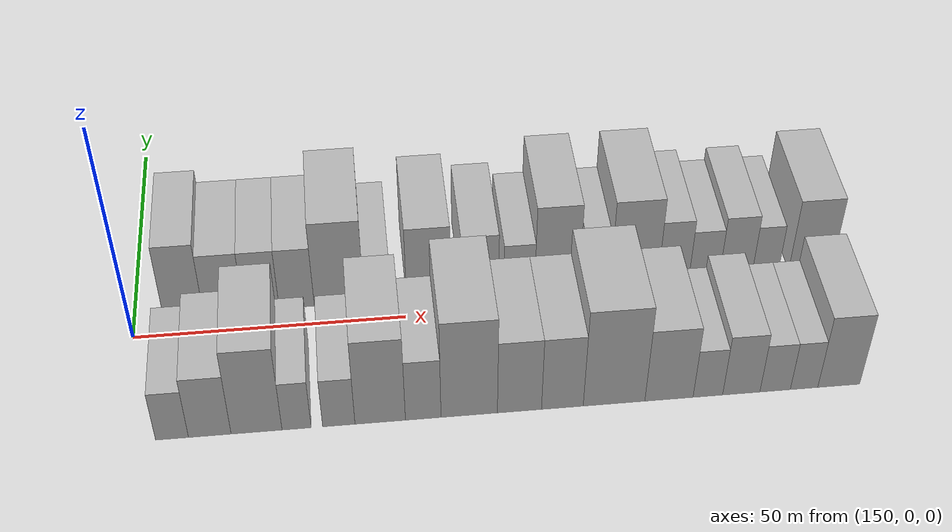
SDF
<sdf version="1.6">
 <world name="default">
  <model name="building_17">
   <static>1</static>
   <pose>158.9749 14.5000 0 0.000000 0.000000 1.570796</pose>
   <link name="link">
    <pose>0 0 9.00 0 0 0</pose>
    <collision name="collision"><geometry><box><size>20.0000 7.3801 18.0000</size></box></geometry></collision>
    <visual name="visual">
     <cast_shadows>0</cast_shadows>
     <geometry><box><size>20.0000 7.3801 18.0000</size></box></geometry>
     <material>
      <script>
       <uri>model://HANNAS_wall/materials/scripts</uri>
       <uri>model://HANNAS_wall/materials/textures</uri>
       <name>vrc/HANNAS_wall</name>
      </script>
     </material>
    </visual>
   </link>
  </model>
  <model name="building_18">
   <static>1</static>
   <pose>166.3791 14.5000 0 0.000000 0.000000 1.570796</pose>
   <link name="link">
    <pose>0 0 7.50 0 0 0</pose>
    <collision name="collision"><geometry><box><size>20.0000 7.4284 15.0000</size></box></geometry></collision>
    <visual name="visual">
     <cast_shadows>0</cast_shadows>
     <geometry><box><size>20.0000 7.4284 15.0000</size></box></geometry>
     <material>
      <script>
       <uri>model://HANNAS_wall/materials/scripts</uri>
       <uri>model://HANNAS_wall/materials/textures</uri>
       <name>vrc/HANNAS_wall</name>
      </script>
     </material>
    </visual>
   </link>
  </model>
  <model name="building_19">
   <static>1</static>
   <pose>173.3979 14.5000 0 0.000000 0.000000 1.570796</pose>
   <link name="link">
    <pose>0 0 7.50 0 0 0</pose>
    <collision name="collision"><geometry><box><size>20.0000 6.6092 15.0000</size></box></geometry></collision>
    <visual name="visual">
     <cast_shadows>0</cast_shadows>
     <geometry><box><size>20.0000 6.6092 15.0000</size></box></geometry>
     <material>
      <script>
       <uri>model://HANNAS_wall/materials/scripts</uri>
       <uri>model://HANNAS_wall/materials/textures</uri>
       <name>vrc/HANNAS_wall</name>
      </script>
     </material>
    </visual>
   </link>
  </model>
  <model name="building_20">
   <static>1</static>
   <pose>179.9726 14.5000 0 0.000000 0.000000 1.570796</pose>
   <link name="link">
    <pose>0 0 7.50 0 0 0</pose>
    <collision name="collision"><geometry><box><size>20.0000 6.5402 15.0000</size></box></geometry></collision>
    <visual name="visual">
     <cast_shadows>0</cast_shadows>
     <geometry><box><size>20.0000 6.5402 15.0000</size></box></geometry>
     <material>
      <script>
       <uri>model://HANNAS_wall/materials/scripts</uri>
       <uri>model://HANNAS_wall/materials/textures</uri>
       <name>vrc/HANNAS_wall</name>
      </script>
     </material>
    </visual>
   </link>
  </model>
  <model name="building_21">
   <static>1</static>
   <pose>187.8923 14.5000 0 0.000000 0.000000 1.570796</pose>
   <link name="link">
    <pose>0 0 10.50 0 0 0</pose>
    <collision name="collision"><geometry><box><size>20.0000 9.2992 21.0000</size></box></geometry></collision>
    <visual name="visual">
     <cast_shadows>0</cast_shadows>
     <geometry><box><size>20.0000 9.2992 21.0000</size></box></geometry>
     <material>
      <script>
       <uri>model://HANNAS_wall/materials/scripts</uri>
       <uri>model://HANNAS_wall/materials/textures</uri>
       <name>vrc/HANNAS_wall</name>
      </script>
     </material>
    </visual>
   </link>
  </model>
  <model name="building_22">
   <static>1</static>
   <pose>195.0158 14.5000 0 0.000000 0.000000 1.570796</pose>
   <link name="link">
    <pose>0 0 6.00 0 0 0</pose>
    <collision name="collision"><geometry><box><size>20.0000 4.9476 12.0000</size></box></geometry></collision>
    <visual name="visual">
     <cast_shadows>0</cast_shadows>
     <geometry><box><size>20.0000 4.9476 12.0000</size></box></geometry>
     <material>
      <script>
       <uri>model://HANNAS_wall/materials/scripts</uri>
       <uri>model://HANNAS_wall/materials/textures</uri>
       <name>vrc/HANNAS_wall</name>
      </script>
     </material>
    </visual>
   </link>
  </model>
  <model name="building_23">
   <static>1</static>
   <pose>204.6551 14.5000 0 0.000000 0.000000 1.570796</pose>
   <link name="link">
    <pose>0 0 9.00 0 0 0</pose>
    <collision name="collision"><geometry><box><size>20.0000 8.3310 18.0000</size></box></geometry></collision>
    <visual name="visual">
     <cast_shadows>0</cast_shadows>
     <geometry><box><size>20.0000 8.3310 18.0000</size></box></geometry>
     <material>
      <script>
       <uri>model://HANNAS_wall/materials/scripts</uri>
       <uri>model://HANNAS_wall/materials/textures</uri>
       <name>vrc/HANNAS_wall</name>
      </script>
     </material>
    </visual>
   </link>
  </model>
  <model name="building_24">
   <static>1</static>
   <pose>214.3445 14.5000 0 0.000000 0.000000 1.570796</pose>
   <link name="link">
    <pose>0 0 7.50 0 0 0</pose>
    <collision name="collision"><geometry><box><size>20.0000 7.0478 15.0000</size></box></geometry></collision>
    <visual name="visual">
     <cast_shadows>0</cast_shadows>
     <geometry><box><size>20.0000 7.0478 15.0000</size></box></geometry>
     <material>
      <script>
       <uri>model://HANNAS_wall/materials/scripts</uri>
       <uri>model://HANNAS_wall/materials/textures</uri>
       <name>vrc/HANNAS_wall</name>
      </script>
     </material>
    </visual>
   </link>
  </model>
  <model name="building_25">
   <static>1</static>
   <pose>221.7925 14.5000 0 0.000000 0.000000 1.570796</pose>
   <link name="link">
    <pose>0 0 6.00 0 0 0</pose>
    <collision name="collision"><geometry><box><size>20.0000 5.8482 12.0000</size></box></geometry></collision>
    <visual name="visual">
     <cast_shadows>0</cast_shadows>
     <geometry><box><size>20.0000 5.8482 12.0000</size></box></geometry>
     <material>
      <script>
       <uri>model://HANNAS_wall/materials/scripts</uri>
       <uri>model://HANNAS_wall/materials/textures</uri>
       <name>vrc/HANNAS_wall</name>
      </script>
     </material>
    </visual>
   </link>
  </model>
  <model name="building_26">
   <static>1</static>
   <pose>228.9413 14.5000 0 0.000000 0.000000 1.570796</pose>
   <link name="link">
    <pose>0 0 10.50 0 0 0</pose>
    <collision name="collision"><geometry><box><size>20.0000 8.4494 21.0000</size></box></geometry></collision>
    <visual name="visual">
     <cast_shadows>0</cast_shadows>
     <geometry><box><size>20.0000 8.4494 21.0000</size></box></geometry>
     <material>
      <script>
       <uri>model://HANNAS_wall/materials/scripts</uri>
       <uri>model://HANNAS_wall/materials/textures</uri>
       <name>vrc/HANNAS_wall</name>
      </script>
     </material>
    </visual>
   </link>
  </model>
  <model name="building_27">
   <static>1</static>
   <pose>236.6416 14.5000 0 0.000000 0.000000 1.570796</pose>
   <link name="link">
    <pose>0 0 6.00 0 0 0</pose>
    <collision name="collision"><geometry><box><size>20.0000 4.9512 12.0000</size></box></geometry></collision>
    <visual name="visual">
     <cast_shadows>0</cast_shadows>
     <geometry><box><size>20.0000 4.9512 12.0000</size></box></geometry>
     <material>
      <script>
       <uri>model://HANNAS_wall/materials/scripts</uri>
       <uri>model://HANNAS_wall/materials/textures</uri>
       <name>vrc/HANNAS_wall</name>
      </script>
     </material>
    </visual>
   </link>
  </model>
  <model name="building_28">
   <static>1</static>
   <pose>243.6999 14.5000 0 0.000000 0.000000 1.570796</pose>
   <link name="link">
    <pose>0 0 10.50 0 0 0</pose>
    <collision name="collision"><geometry><box><size>20.0000 9.1655 21.0000</size></box></geometry></collision>
    <visual name="visual">
     <cast_shadows>0</cast_shadows>
     <geometry><box><size>20.0000 9.1655 21.0000</size></box></geometry>
     <material>
      <script>
       <uri>model://HANNAS_wall/materials/scripts</uri>
       <uri>model://HANNAS_wall/materials/textures</uri>
       <name>vrc/HANNAS_wall</name>
      </script>
     </material>
    </visual>
   </link>
  </model>
  <model name="building_29">
   <static>1</static>
   <pose>251.2862 14.5000 0 0.000000 0.000000 1.570796</pose>
   <link name="link">
    <pose>0 0 7.50 0 0 0</pose>
    <collision name="collision"><geometry><box><size>20.0000 6.0071 15.0000</size></box></geometry></collision>
    <visual name="visual">
     <cast_shadows>0</cast_shadows>
     <geometry><box><size>20.0000 6.0071 15.0000</size></box></geometry>
     <material>
      <script>
       <uri>model://HANNAS_wall/materials/scripts</uri>
       <uri>model://HANNAS_wall/materials/textures</uri>
       <name>vrc/HANNAS_wall</name>
      </script>
     </material>
    </visual>
   </link>
  </model>
  <model name="building_30">
   <static>1</static>
   <pose>257.2351 14.5000 0 0.000000 0.000000 1.570796</pose>
   <link name="link">
    <pose>0 0 6.00 0 0 0</pose>
    <collision name="collision"><geometry><box><size>20.0000 5.8907 12.0000</size></box></geometry></collision>
    <visual name="visual">
     <cast_shadows>0</cast_shadows>
     <geometry><box><size>20.0000 5.8907 12.0000</size></box></geometry>
     <material>
      <script>
       <uri>model://HANNAS_wall/materials/scripts</uri>
       <uri>model://HANNAS_wall/materials/textures</uri>
       <name>vrc/HANNAS_wall</name>
      </script>
     </material>
    </visual>
   </link>
  </model>
  <model name="building_31">
   <static>1</static>
   <pose>263.3478 14.5000 0 0.000000 0.000000 1.570796</pose>
   <link name="link">
    <pose>0 0 7.50 0 0 0</pose>
    <collision name="collision"><geometry><box><size>20.0000 6.3346 15.0000</size></box></geometry></collision>
    <visual name="visual">
     <cast_shadows>0</cast_shadows>
     <geometry><box><size>20.0000 6.3346 15.0000</size></box></geometry>
     <material>
      <script>
       <uri>model://HANNAS_wall/materials/scripts</uri>
       <uri>model://HANNAS_wall/materials/textures</uri>
       <name>vrc/HANNAS_wall</name>
      </script>
     </material>
    </visual>
   </link>
  </model>
  <model name="building_32">
   <static>1</static>
   <pose>269.0631 14.5000 0 0.000000 0.000000 1.570796</pose>
   <link name="link">
    <pose>0 0 6.00 0 0 0</pose>
    <collision name="collision"><geometry><box><size>20.0000 5.0959 12.0000</size></box></geometry></collision>
    <visual name="visual">
     <cast_shadows>0</cast_shadows>
     <geometry><box><size>20.0000 5.0959 12.0000</size></box></geometry>
     <material>
      <script>
       <uri>model://HANNAS_wall/materials/scripts</uri>
       <uri>model://HANNAS_wall/materials/textures</uri>
       <name>vrc/HANNAS_wall</name>
      </script>
     </material>
    </visual>
   </link>
  </model>
  <model name="building_33">
   <static>1</static>
   <pose>277.8406 14.5000 0 0.000000 0.000000 1.570796</pose>
   <link name="link">
    <pose>0 0 9.00 0 0 0</pose>
    <collision name="collision"><geometry><box><size>20.0000 8.4593 18.0000</size></box></geometry></collision>
    <visual name="visual">
     <cast_shadows>0</cast_shadows>
     <geometry><box><size>20.0000 8.4593 18.0000</size></box></geometry>
     <material>
      <script>
       <uri>model://HANNAS_wall/materials/scripts</uri>
       <uri>model://HANNAS_wall/materials/textures</uri>
       <name>vrc/HANNAS_wall</name>
      </script>
     </material>
    </visual>
   </link>
  </model>
  <model name="building_50">
   <static>1</static>
   <pose>157.9171 -14.5000 0 0.000000 0.000000 1.570796</pose>
   <link name="link">
    <pose>0 0 6.00 0 0 0</pose>
    <collision name="collision"><geometry><box><size>20.0000 5.6320 12.0000</size></box></geometry></collision>
    <visual name="visual">
     <cast_shadows>0</cast_shadows>
     <geometry><box><size>20.0000 5.6320 12.0000</size></box></geometry>
     <material>
      <script>
       <uri>model://HANNAS_wall/materials/scripts</uri>
       <uri>model://HANNAS_wall/materials/textures</uri>
       <name>vrc/HANNAS_wall</name>
      </script>
     </material>
    </visual>
   </link>
  </model>
  <model name="building_51">
   <static>1</static>
   <pose>164.3888 -14.5000 0 0.000000 0.000000 1.570796</pose>
   <link name="link">
    <pose>0 0 7.50 0 0 0</pose>
    <collision name="collision"><geometry><box><size>20.0000 7.3114 15.0000</size></box></geometry></collision>
    <visual name="visual">
     <cast_shadows>0</cast_shadows>
     <geometry><box><size>20.0000 7.3114 15.0000</size></box></geometry>
     <material>
      <script>
       <uri>model://HANNAS_wall/materials/scripts</uri>
       <uri>model://HANNAS_wall/materials/textures</uri>
       <name>vrc/HANNAS_wall</name>
      </script>
     </material>
    </visual>
   </link>
  </model>
  <model name="building_52">
   <static>1</static>
   <pose>172.4327 -14.5000 0 0.000000 0.000000 1.570796</pose>
   <link name="link">
    <pose>0 0 10.50 0 0 0</pose>
    <collision name="collision"><geometry><box><size>20.0000 8.7764 21.0000</size></box></geometry></collision>
    <visual name="visual">
     <cast_shadows>0</cast_shadows>
     <geometry><box><size>20.0000 8.7764 21.0000</size></box></geometry>
     <material>
      <script>
       <uri>model://HANNAS_wall/materials/scripts</uri>
       <uri>model://HANNAS_wall/materials/textures</uri>
       <name>vrc/HANNAS_wall</name>
      </script>
     </material>
    </visual>
   </link>
  </model>
  <model name="building_53">
   <static>1</static>
   <pose>179.3356 -14.5000 0 0.000000 0.000000 1.570796</pose>
   <link name="link">
    <pose>0 0 6.00 0 0 0</pose>
    <collision name="collision"><geometry><box><size>20.0000 5.0295 12.0000</size></box></geometry></collision>
    <visual name="visual">
     <cast_shadows>0</cast_shadows>
     <geometry><box><size>20.0000 5.0295 12.0000</size></box></geometry>
     <material>
      <script>
       <uri>model://HANNAS_wall/materials/scripts</uri>
       <uri>model://HANNAS_wall/materials/textures</uri>
       <name>vrc/HANNAS_wall</name>
      </script>
     </material>
    </visual>
   </link>
  </model>
  <model name="building_54">
   <static>1</static>
   <pose>186.6545 -14.5000 0 0.000000 0.000000 1.570796</pose>
   <link name="link">
    <pose>0 0 6.00 0 0 0</pose>
    <collision name="collision"><geometry><box><size>20.0000 5.6083 12.0000</size></box></geometry></collision>
    <visual name="visual">
     <cast_shadows>0</cast_shadows>
     <geometry><box><size>20.0000 5.6083 12.0000</size></box></geometry>
     <material>
      <script>
       <uri>model://HANNAS_wall/materials/scripts</uri>
       <uri>model://HANNAS_wall/materials/textures</uri>
       <name>vrc/HANNAS_wall</name>
      </script>
     </material>
    </visual>
   </link>
  </model>
  <model name="building_55">
   <static>1</static>
   <pose>193.8561 -14.5000 0 0.000000 0.000000 1.570796</pose>
   <link name="link">
    <pose>0 0 10.50 0 0 0</pose>
    <collision name="collision"><geometry><box><size>20.0000 8.7949 21.0000</size></box></geometry></collision>
    <visual name="visual">
     <cast_shadows>0</cast_shadows>
     <geometry><box><size>20.0000 8.7949 21.0000</size></box></geometry>
     <material>
      <script>
       <uri>model://HANNAS_wall/materials/scripts</uri>
       <uri>model://HANNAS_wall/materials/textures</uri>
       <name>vrc/HANNAS_wall</name>
      </script>
     </material>
    </visual>
   </link>
  </model>
  <model name="building_56">
   <static>1</static>
   <pose>201.3664 -14.5000 0 0.000000 0.000000 1.570796</pose>
   <link name="link">
    <pose>0 0 7.50 0 0 0</pose>
    <collision name="collision"><geometry><box><size>20.0000 6.2258 15.0000</size></box></geometry></collision>
    <visual name="visual">
     <cast_shadows>0</cast_shadows>
     <geometry><box><size>20.0000 6.2258 15.0000</size></box></geometry>
     <material>
      <script>
       <uri>model://HANNAS_wall/materials/scripts</uri>
       <uri>model://HANNAS_wall/materials/textures</uri>
       <name>vrc/HANNAS_wall</name>
      </script>
     </material>
    </visual>
   </link>
  </model>
  <model name="building_57">
   <static>1</static>
   <pose>209.4299 -14.5000 0 0.000000 0.000000 1.570796</pose>
   <link name="link">
    <pose>0 0 12.00 0 0 0</pose>
    <collision name="collision"><geometry><box><size>20.0000 9.9013 24.0000</size></box></geometry></collision>
    <visual name="visual">
     <cast_shadows>0</cast_shadows>
     <geometry><box><size>20.0000 9.9013 24.0000</size></box></geometry>
     <material>
      <script>
       <uri>model://HANNAS_wall/materials/scripts</uri>
       <uri>model://HANNAS_wall/materials/textures</uri>
       <name>vrc/HANNAS_wall</name>
      </script>
     </material>
    </visual>
   </link>
  </model>
  <model name="building_58">
   <static>1</static>
   <pose>218.2733 -14.5000 0 0.000000 0.000000 1.570796</pose>
   <link name="link">
    <pose>0 0 9.00 0 0 0</pose>
    <collision name="collision"><geometry><box><size>20.0000 7.7855 18.0000</size></box></geometry></collision>
    <visual name="visual">
     <cast_shadows>0</cast_shadows>
     <geometry><box><size>20.0000 7.7855 18.0000</size></box></geometry>
     <material>
      <script>
       <uri>model://HANNAS_wall/materials/scripts</uri>
       <uri>model://HANNAS_wall/materials/textures</uri>
       <name>vrc/HANNAS_wall</name>
      </script>
     </material>
    </visual>
   </link>
  </model>
  <model name="building_59">
   <static>1</static>
   <pose>225.8630 -14.5000 0 0.000000 0.000000 1.570796</pose>
   <link name="link">
    <pose>0 0 9.00 0 0 0</pose>
    <collision name="collision"><geometry><box><size>20.0000 7.3939 18.0000</size></box></geometry></collision>
    <visual name="visual">
     <cast_shadows>0</cast_shadows>
     <geometry><box><size>20.0000 7.3939 18.0000</size></box></geometry>
     <material>
      <script>
       <uri>model://HANNAS_wall/materials/scripts</uri>
       <uri>model://HANNAS_wall/materials/textures</uri>
       <name>vrc/HANNAS_wall</name>
      </script>
     </material>
    </visual>
   </link>
  </model>
  <model name="building_60">
   <static>1</static>
   <pose>235.0526 -14.5000 0 0.000000 0.000000 1.570796</pose>
   <link name="link">
    <pose>0 0 12.00 0 0 0</pose>
    <collision name="collision"><geometry><box><size>20.0000 10.9851 24.0000</size></box></geometry></collision>
    <visual name="visual">
     <cast_shadows>0</cast_shadows>
     <geometry><box><size>20.0000 10.9851 24.0000</size></box></geometry>
     <material>
      <script>
       <uri>model://HANNAS_wall/materials/scripts</uri>
       <uri>model://HANNAS_wall/materials/textures</uri>
       <name>vrc/HANNAS_wall</name>
      </script>
     </material>
    </visual>
   </link>
  </model>
  <model name="building_61">
   <static>1</static>
   <pose>244.8591 -14.5000 0 0.000000 0.000000 1.570796</pose>
   <link name="link">
    <pose>0 0 9.00 0 0 0</pose>
    <collision name="collision"><geometry><box><size>20.0000 8.6280 18.0000</size></box></geometry></collision>
    <visual name="visual">
     <cast_shadows>0</cast_shadows>
     <geometry><box><size>20.0000 8.6280 18.0000</size></box></geometry>
     <material>
      <script>
       <uri>model://HANNAS_wall/materials/scripts</uri>
       <uri>model://HANNAS_wall/materials/textures</uri>
       <name>vrc/HANNAS_wall</name>
      </script>
     </material>
    </visual>
   </link>
  </model>
  <model name="building_62">
   <static>1</static>
   <pose>251.8295 -14.5000 0 0.000000 0.000000 1.570796</pose>
   <link name="link">
    <pose>0 0 6.00 0 0 0</pose>
    <collision name="collision"><geometry><box><size>20.0000 5.3128 12.0000</size></box></geometry></collision>
    <visual name="visual">
     <cast_shadows>0</cast_shadows>
     <geometry><box><size>20.0000 5.3128 12.0000</size></box></geometry>
     <material>
      <script>
       <uri>model://HANNAS_wall/materials/scripts</uri>
       <uri>model://HANNAS_wall/materials/textures</uri>
       <name>vrc/HANNAS_wall</name>
      </script>
     </material>
    </visual>
   </link>
  </model>
  <model name="building_63">
   <static>1</static>
   <pose>257.8450 -14.5000 0 0.000000 0.000000 1.570796</pose>
   <link name="link">
    <pose>0 0 7.50 0 0 0</pose>
    <collision name="collision"><geometry><box><size>20.0000 6.7183 15.0000</size></box></geometry></collision>
    <visual name="visual">
     <cast_shadows>0</cast_shadows>
     <geometry><box><size>20.0000 6.7183 15.0000</size></box></geometry>
     <material>
      <script>
       <uri>model://HANNAS_wall/materials/scripts</uri>
       <uri>model://HANNAS_wall/materials/textures</uri>
       <name>vrc/HANNAS_wall</name>
      </script>
     </material>
    </visual>
   </link>
  </model>
  <model name="building_64">
   <static>1</static>
   <pose>263.9574 -14.5000 0 0.000000 0.000000 1.570796</pose>
   <link name="link">
    <pose>0 0 6.00 0 0 0</pose>
    <collision name="collision"><geometry><box><size>20.0000 5.5066 12.0000</size></box></geometry></collision>
    <visual name="visual">
     <cast_shadows>0</cast_shadows>
     <geometry><box><size>20.0000 5.5066 12.0000</size></box></geometry>
     <material>
      <script>
       <uri>model://HANNAS_wall/materials/scripts</uri>
       <uri>model://HANNAS_wall/materials/textures</uri>
       <name>vrc/HANNAS_wall</name>
      </script>
     </material>
    </visual>
   </link>
  </model>
  <model name="building_65">
   <static>1</static>
   <pose>269.2018 -14.5000 0 0.000000 0.000000 1.570796</pose>
   <link name="link">
    <pose>0 0 6.00 0 0 0</pose>
    <collision name="collision"><geometry><box><size>20.0000 4.9821 12.0000</size></box></geometry></collision>
    <visual name="visual">
     <cast_shadows>0</cast_shadows>
     <geometry><box><size>20.0000 4.9821 12.0000</size></box></geometry>
     <material>
      <script>
       <uri>model://HANNAS_wall/materials/scripts</uri>
       <uri>model://HANNAS_wall/materials/textures</uri>
       <name>vrc/HANNAS_wall</name>
      </script>
     </material>
    </visual>
   </link>
  </model>
  <model name="building_66">
   <static>1</static>
   <pose>275.5016 -14.5000 0 0.000000 0.000000 1.570796</pose>
   <link name="link">
    <pose>0 0 9.00 0 0 0</pose>
    <collision name="collision"><geometry><box><size>20.0000 7.6176 18.0000</size></box></geometry></collision>
    <visual name="visual">
     <cast_shadows>0</cast_shadows>
     <geometry><box><size>20.0000 7.6176 18.0000</size></box></geometry>
     <material>
      <script>
       <uri>model://HANNAS_wall/materials/scripts</uri>
       <uri>model://HANNAS_wall/materials/textures</uri>
       <name>vrc/HANNAS_wall</name>
      </script>
     </material>
    </visual>
   </link>
  </model>
 </world>
</sdf>
